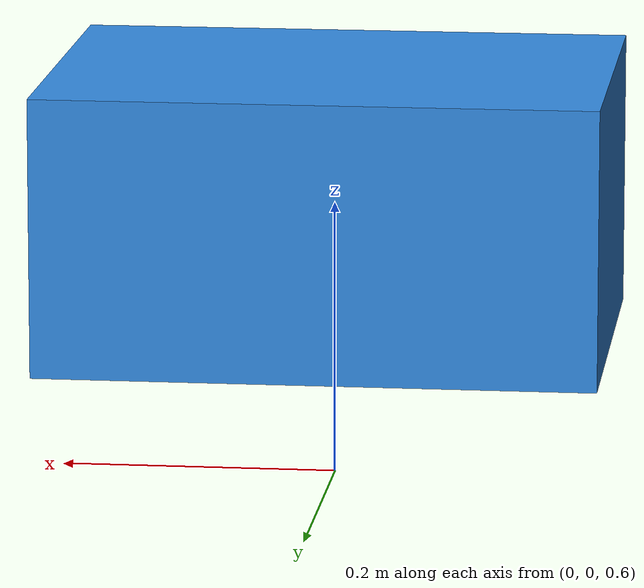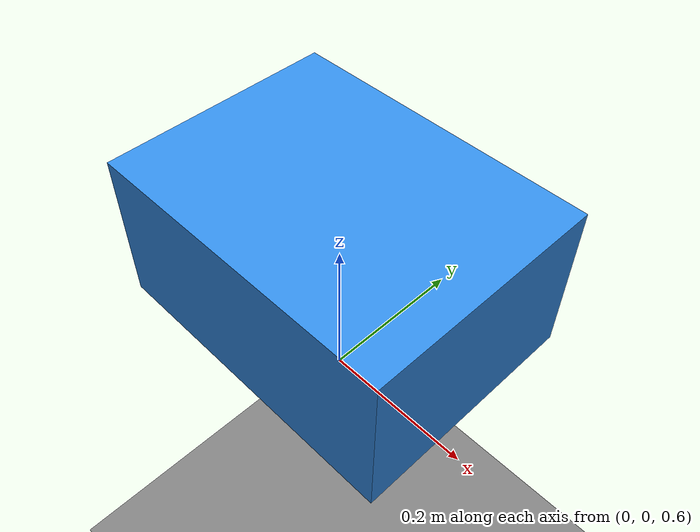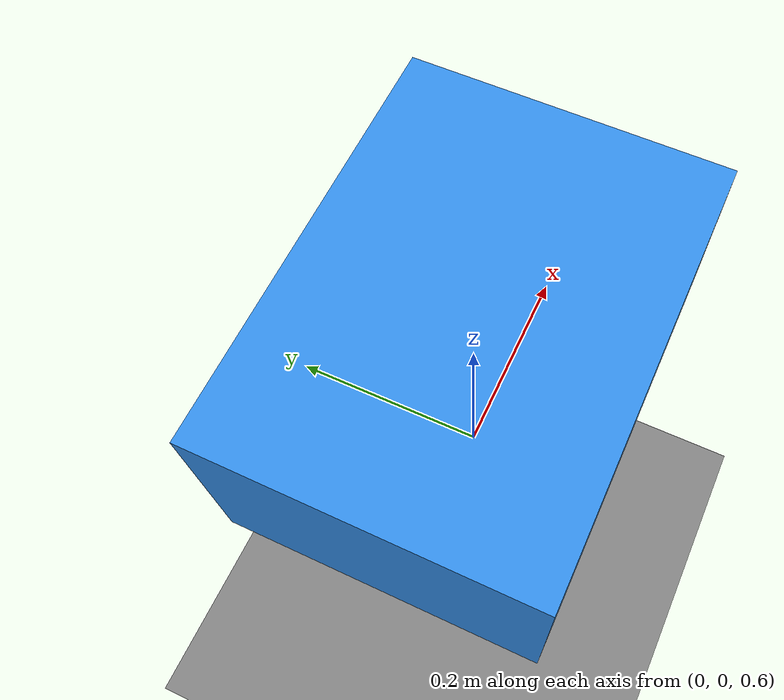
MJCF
<mujoco model="free box">
  <option timestep="0.002" gravity="0 0 -9.81"/>

  <visual>
    <headlight ambient="0.4 0.4 0.4" diffuse="0.9 0.8 0.8"/>
  </visual>

  <asset>
    <texture name="checker" type="2d" builtin="checker"
             rgb1="0.15 0.15 0.15" rgb2="0.85 0.85 0.85"
             width="256" height="256"/>
    <material name="checker-floor" texture="checker"
              texrepeat="2 2" texuniform="true" reflectance="0.1"/>
  </asset>

  <worldbody>
    <geom name="floor" type="plane" size="4 4 0.1" material="checker-floor"/>

    <body name="box-body" pos="0 0 0.8">
      <freejoint name="box-joint"/>
      <geom name="box" type="box" size="0.2 0.15 0.1" mass="1"
            solref="-1000 -5"
            rgba="0.2 0.55 0.9 1"/>
    </body>
  </worldbody>
</mujoco>
